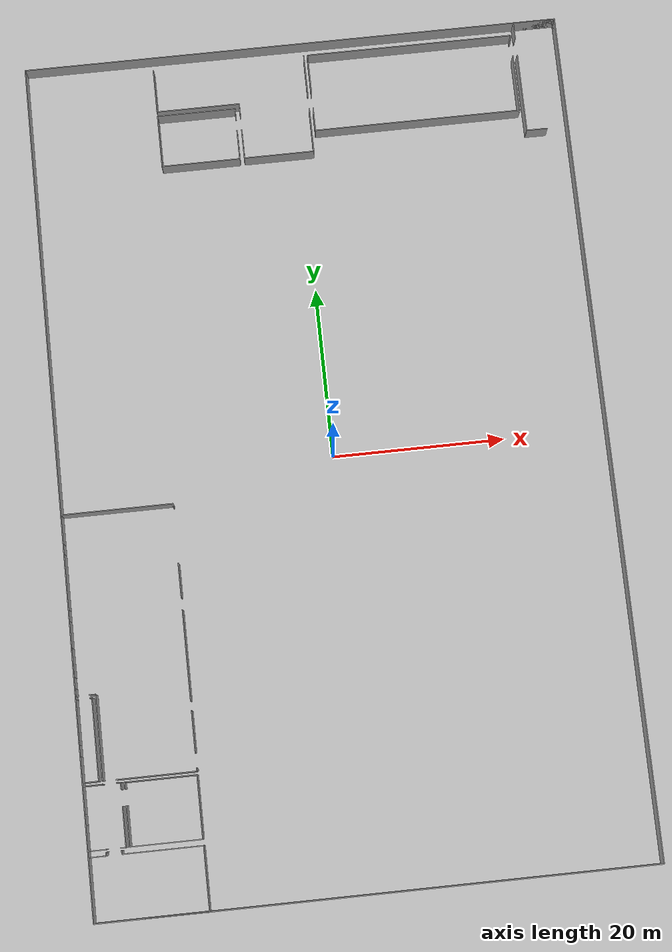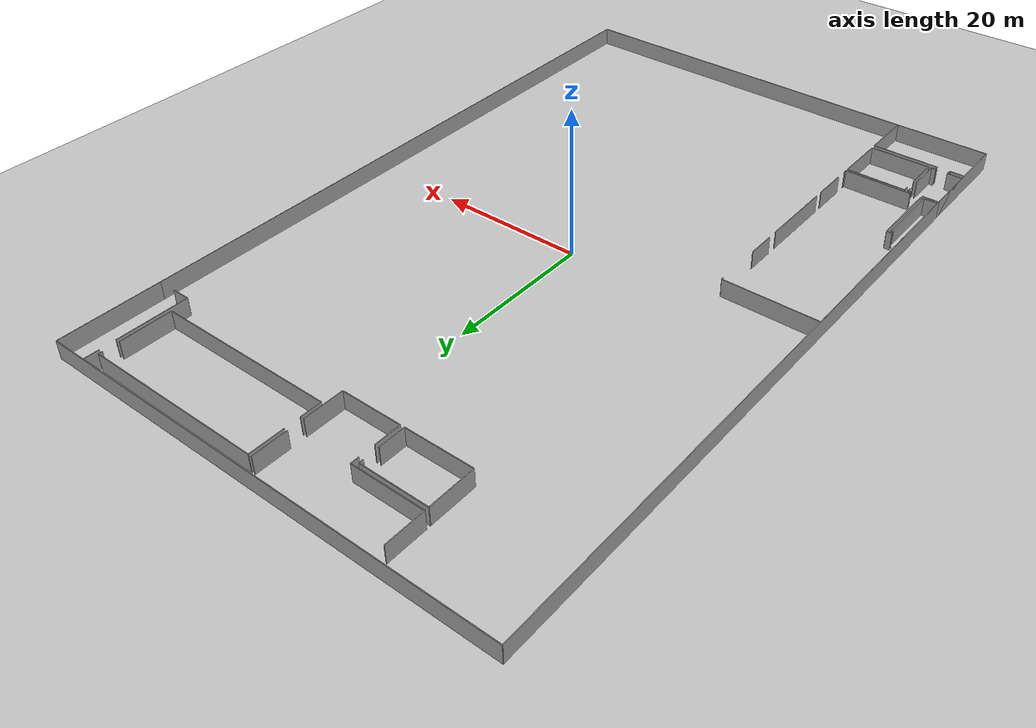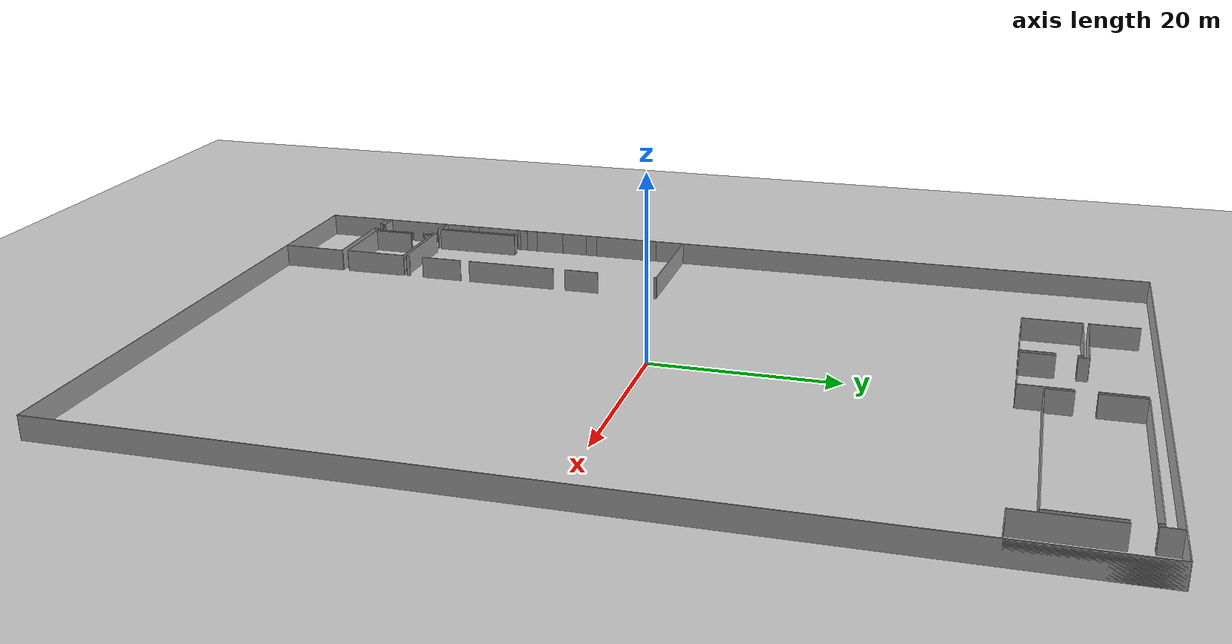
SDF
<sdf version="1.6">
  <world name="default">
    <light name="sun" type="directional">
      <cast_shadows>1</cast_shadows>
      <pose frame="">0 0 10 0 -0 0</pose>
      <diffuse>0.8 0.8 0.8 1</diffuse>
      <specular>0.1 0.1 0.1 1</specular>
      <attenuation>
        <range>1000</range>
        <constant>0.9</constant>
        <linear>0.01</linear>
        <quadratic>0.001</quadratic>
      </attenuation>
      <direction>-0.5 0.5 -1</direction>
    </light>
    <model name="ground_plane">
      <static>1</static>
      <link name="link">
        <collision name="collision">
          <geometry>
            <plane>
              <normal>0 0 1</normal>
              <size>100 100</size>
            </plane>
          </geometry>
          <surface>
            <friction>
              <ode>
                <mu>100</mu>
                <mu2>50</mu2>
              </ode>
              <torsional>
                <ode />
              </torsional>
            </friction>
            <contact>
              <ode />
            </contact>
            <bounce />
          </surface>
          <max_contacts>10</max_contacts>
        </collision>
        <visual name="visual">
          <cast_shadows>0</cast_shadows>
          <geometry>
            <plane>
              <normal>0 0 1</normal>
              <size>100 100</size>
            </plane>
          </geometry>
          <material>
            <script>
              <uri>file://media/materials/scripts/gazebo.material</uri>
              <name>Gazebo/Grey</name>
            </script>
          </material>
        </visual>
        <self_collide>0</self_collide>
        <kinematic>0</kinematic>
        <gravity>1</gravity>
      </link>
    </model>
    <gravity>0 0 -9.8</gravity>
    <magnetic_field>6e-06 2.3e-05 -4.2e-05</magnetic_field>
    <atmosphere type="adiabatic" />
    <physics default="0" name="default_physics" type="ode">
      <max_step_size>0.001</max_step_size>
      <real_time_factor>1</real_time_factor>
      <real_time_update_rate>1000</real_time_update_rate>
    </physics>
    <scene>
      <ambient>0.4 0.4 0.4 1</ambient>
      <background>0.7 0.7 0.7 1</background>
      <shadows>1</shadows>
    </scene>
    <spherical_coordinates>
      <surface_model>EARTH_WGS84</surface_model>
      <latitude_deg>0</latitude_deg>
      <longitude_deg>0</longitude_deg>
      <elevation>0</elevation>
      <heading_deg>0</heading_deg>
    </spherical_coordinates>
  <model name="0510035523_A_40_1_106">
		<static>1</static>
		<link name="Wall_0">
			<collision name="Wall_0_Collision">
				<geometry>
					<box>
						<size>7.23037627235 0.1 2.5</size>
					</box>
				</geometry>
				<pose frame="">3.61518813617 0 1.25 0 0 0</pose>
			</collision>
			<visual name="Wall_0_Visual">
				<pose frame="">3.61518813617 0 1.25 0 0 0</pose>
				<geometry>
					<box>
						<size>7.23037627235 0.1 2.5</size>
					</box>
				</geometry>
				<material>
					<script>
						<uri>file://media/materials/scripts/gazebo.material</uri>
						<name>Gazebo/Grey</name>
					</script>
					<ambient>1 1 1 1</ambient>
				</material>
			</visual>
			<pose frame="">0.00101660884704 -99.8797860038 0 0 0 1.57079632679</pose>
		</link>
		<link name="Wall_1">
			<collision name="Wall_1_Collision">
				<geometry>
					<box>
						<size>1.98950351365 0.1 2.5</size>
					</box>
				</geometry>
				<pose frame="">0.994751756827 0 1.25 0 0 0</pose>
			</collision>
			<visual name="Wall_1_Visual">
				<pose frame="">0.994751756827 0 1.25 0 0 0</pose>
				<geometry>
					<box>
						<size>1.98950351365 0.1 2.5</size>
					</box>
				</geometry>
				<material>
					<script>
						<uri>file://media/materials/scripts/gazebo.material</uri>
						<name>Gazebo/Grey</name>
					</script>
					<ambient>1 1 1 1</ambient>
				</material>
			</visual>
			<pose frame="">0.00101660884704 -92.6494097315 0 0 0 0.0</pose>
		</link>
		<link name="Wall_2">
			<collision name="Wall_2_Collision">
				<geometry>
					<box>
						<size>0.396477450345 0.1 2.5</size>
					</box>
				</geometry>
				<pose frame="">0.198238725172 0 1.25 0 0 0</pose>
			</collision>
			<visual name="Wall_2_Visual">
				<pose frame="">0.198238725172 0 1.25 0 0 0</pose>
				<geometry>
					<box>
						<size>0.396477450345 0.1 2.5</size>
					</box>
				</geometry>
				<material>
					<script>
						<uri>file://media/materials/scripts/gazebo.material</uri>
						<name>Gazebo/Grey</name>
					</script>
					<ambient>1 1 1 1</ambient>
				</material>
			</visual>
			<pose frame="">1.9905201225 -92.6494097315 0 0 0 1.57079632679</pose>
		</link>
		<link name="Wall_3">
			<collision name="Wall_3_Collision">
				<geometry>
					<box>
						<size>0.124026279339 0.1 2.5</size>
					</box>
				</geometry>
				<pose frame="">0.0620131396693 0 1.25 0 0 0</pose>
			</collision>
			<visual name="Wall_3_Visual">
				<pose frame="">0.0620131396693 0 1.25 0 0 0</pose>
				<geometry>
					<box>
						<size>0.124026279339 0.1 2.5</size>
					</box>
				</geometry>
				<material>
					<script>
						<uri>file://media/materials/scripts/gazebo.material</uri>
						<name>Gazebo/Grey</name>
					</script>
					<ambient>1 1 1 1</ambient>
				</material>
			</visual>
			<pose frame="">1.9905201225 -92.2529322811 0 0 0 0.0</pose>
		</link>
		<link name="Wall_4">
			<collision name="Wall_4_Collision">
				<geometry>
					<box>
						<size>0.0815828599748 0.1 2.5</size>
					</box>
				</geometry>
				<pose frame="">0.0407914299874 0 1.25 0 0 0</pose>
			</collision>
			<visual name="Wall_4_Visual">
				<pose frame="">0.0407914299874 0 1.25 0 0 0</pose>
				<geometry>
					<box>
						<size>0.0815828599748 0.1 2.5</size>
					</box>
				</geometry>
				<material>
					<script>
						<uri>file://media/materials/scripts/gazebo.material</uri>
						<name>Gazebo/Grey</name>
					</script>
					<ambient>1 1 1 1</ambient>
				</material>
			</visual>
			<pose frame="">3.68215724397 -92.2529322811 0 0 0 0.0</pose>
		</link>
		<link name="Wall_5">
			<collision name="Wall_5_Collision">
				<geometry>
					<box>
						<size>0.385803057451 0.1 2.5</size>
					</box>
				</geometry>
				<pose frame="">0.192901528726 0 1.25 0 0 0</pose>
			</collision>
			<visual name="Wall_5_Visual">
				<pose frame="">0.192901528726 0 1.25 0 0 0</pose>
				<geometry>
					<box>
						<size>0.385803057451 0.1 2.5</size>
					</box>
				</geometry>
				<material>
					<script>
						<uri>file://media/materials/scripts/gazebo.material</uri>
						<name>Gazebo/Grey</name>
					</script>
					<ambient>1 1 1 1</ambient>
				</material>
			</visual>
			<pose frame="">3.76374010395 -92.2529322811 0 0 0 -1.57079632679</pose>
		</link>
		<link name="Wall_6">
			<collision name="Wall_6_Collision">
				<geometry>
					<box>
						<size>9.12431855438 0.1 2.5</size>
					</box>
				</geometry>
				<pose frame="">4.56215927719 0 1.25 0 0 0</pose>
			</collision>
			<visual name="Wall_6_Visual">
				<pose frame="">4.56215927719 0 1.25 0 0 0</pose>
				<geometry>
					<box>
						<size>9.12431855438 0.1 2.5</size>
					</box>
				</geometry>
				<material>
					<script>
						<uri>file://media/materials/scripts/gazebo.material</uri>
						<name>Gazebo/Grey</name>
					</script>
					<ambient>1 1 1 1</ambient>
				</material>
			</visual>
			<pose frame="">3.76374010395 -92.6387353386 0 0 0 0.0</pose>
		</link>
		<link name="Wall_7">
			<collision name="Wall_7_Collision">
				<geometry>
					<box>
						<size>7.2336802511 0.1 2.5</size>
					</box>
				</geometry>
				<pose frame="">3.61684012555 0 1.25 0 0 0</pose>
			</collision>
			<visual name="Wall_7_Visual">
				<pose frame="">3.61684012555 0 1.25 0 0 0</pose>
				<geometry>
					<box>
						<size>7.2336802511 0.1 2.5</size>
					</box>
				</geometry>
				<material>
					<script>
						<uri>file://media/materials/scripts/gazebo.material</uri>
						<name>Gazebo/Grey</name>
					</script>
					<ambient>1 1 1 1</ambient>
				</material>
			</visual>
			<pose frame="">12.8880586583 -92.6387353386 0 0 0 -1.57079632679</pose>
		</link>
		<link name="Wall_8">
			<collision name="Wall_8_Collision">
				<geometry>
					<box>
						<size>12.8870441571 0.1 2.5</size>
					</box>
				</geometry>
				<pose frame="">6.44352207857 0 1.25 0 0 0</pose>
			</collision>
			<visual name="Wall_8_Visual">
				<pose frame="">6.44352207857 0 1.25 0 0 0</pose>
				<geometry>
					<box>
						<size>12.8870441571 0.1 2.5</size>
					</box>
				</geometry>
				<material>
					<script>
						<uri>file://media/materials/scripts/gazebo.material</uri>
						<name>Gazebo/Grey</name>
					</script>
					<ambient>1 1 1 1</ambient>
				</material>
			</visual>
			<pose frame="">12.8880586583 -99.8724155897 0 0 0 -3.14102072923</pose>
		</link>
		<link name="Wall_9">
			<collision name="Wall_9_Collision">
				<geometry>
					<box>
						<size>8.17734741337 0.1 2.5</size>
					</box>
				</geometry>
				<pose frame="">4.08867370668 0 1.25 0 0 0</pose>
			</collision>
			<visual name="Wall_9_Visual">
				<pose frame="">4.08867370668 0 1.25 0 0 0</pose>
				<geometry>
					<box>
						<size>8.17734741337 0.1 2.5</size>
					</box>
				</geometry>
				<material>
					<script>
						<uri>file://media/materials/scripts/gazebo.material</uri>
						<name>Gazebo/Grey</name>
					</script>
					<ambient>1 1 1 1</ambient>
				</material>
			</visual>
			<pose frame="">4.67640069638 -84.7806031032 0 0 0 0.0</pose>
		</link>
		<link name="Wall_10">
			<collision name="Wall_10_Collision">
				<geometry>
					<box>
						<size>7.14828510795 0.1 2.5</size>
					</box>
				</geometry>
				<pose frame="">3.57414255398 0 1.25 0 0 0</pose>
			</collision>
			<visual name="Wall_10_Visual">
				<pose frame="">3.57414255398 0 1.25 0 0 0</pose>
				<geometry>
					<box>
						<size>7.14828510795 0.1 2.5</size>
					</box>
				</geometry>
				<material>
					<script>
						<uri>file://media/materials/scripts/gazebo.material</uri>
						<name>Gazebo/Grey</name>
					</script>
					<ambient>1 1 1 1</ambient>
				</material>
			</visual>
			<pose frame="">12.8537481097 -84.7806031032 0 0 0 -1.57079632679</pose>
		</link>
		<link name="Wall_11">
			<collision name="Wall_11_Collision">
				<geometry>
					<box>
						<size>8.16997699922 0.1 2.5</size>
					</box>
				</geometry>
				<pose frame="">4.08498849961 0 1.25 0 0 0</pose>
			</collision>
			<visual name="Wall_11_Visual">
				<pose frame="">4.08498849961 0 1.25 0 0 0</pose>
				<geometry>
					<box>
						<size>8.16997699922 0.1 2.5</size>
					</box>
				</geometry>
				<material>
					<script>
						<uri>file://media/materials/scripts/gazebo.material</uri>
						<name>Gazebo/Grey</name>
					</script>
					<ambient>1 1 1 1</ambient>
				</material>
			</visual>
			<pose frame="">12.8537481097 -91.9288882111 0 0 0 3.14159265359</pose>
		</link>
		<link name="Wall_12">
			<collision name="Wall_12_Collision">
				<geometry>
					<box>
						<size>4.5622863533 0.1 2.5</size>
					</box>
				</geometry>
				<pose frame="">2.28114317665 0 1.25 0 0 0</pose>
			</collision>
			<visual name="Wall_12_Visual">
				<pose frame="">2.28114317665 0 1.25 0 0 0</pose>
				<geometry>
					<box>
						<size>4.5622863533 0.1 2.5</size>
					</box>
				</geometry>
				<material>
					<script>
						<uri>file://media/materials/scripts/gazebo.material</uri>
						<name>Gazebo/Grey</name>
					</script>
					<ambient>1 1 1 1</ambient>
				</material>
			</visual>
			<pose frame="">4.68377111052 -91.9288882111 0 0 0 1.57079632679</pose>
		</link>
		<link name="Wall_13">
			<collision name="Wall_13_Collision">
				<geometry>
					<box>
						<size>0.75258079103 0.1 2.5</size>
					</box>
				</geometry>
				<pose frame="">0.376290395515 0 1.25 0 0 0</pose>
			</collision>
			<visual name="Wall_13_Visual">
				<pose frame="">0.376290395515 0 1.25 0 0 0</pose>
				<geometry>
					<box>
						<size>0.75258079103 0.1 2.5</size>
					</box>
				</geometry>
				<material>
					<script>
						<uri>file://media/materials/scripts/gazebo.material</uri>
						<name>Gazebo/Grey</name>
					</script>
					<ambient>1 1 1 1</ambient>
				</material>
			</visual>
			<pose frame="">4.68377111052 -85.5331478022 0 0 0 1.58059000218</pose>
		</link>
		<link name="Wall_14">
			<collision name="Wall_14_Collision">
				<geometry>
					<box>
						<size>2.8571791646 0.1 2.5</size>
					</box>
				</geometry>
				<pose frame="">1.4285895823 0 1.25 0 0 0</pose>
			</collision>
			<visual name="Wall_14_Visual">
				<pose frame="">1.4285895823 0 1.25 0 0 0</pose>
				<geometry>
					<box>
						<size>2.8571791646 0.1 2.5</size>
					</box>
				</geometry>
				<material>
					<script>
						<uri>file://media/materials/scripts/gazebo.material</uri>
						<name>Gazebo/Grey</name>
					</script>
					<ambient>1 1 1 1</ambient>
				</material>
			</visual>
			<pose frame="">0.0 -91.9507453014 0 0 0 1.57079632679</pose>
		</link>
		<link name="Wall_15">
			<collision name="Wall_15_Collision">
				<geometry>
					<box>
						<size>3.07066702248 0.1 2.5</size>
					</box>
				</geometry>
				<pose frame="">1.53533351124 0 1.25 0 0 0</pose>
			</collision>
			<visual name="Wall_15_Visual">
				<pose frame="">1.53533351124 0 1.25 0 0 0</pose>
				<geometry>
					<box>
						<size>3.07066702248 0.1 2.5</size>
					</box>
				</geometry>
				<material>
					<script>
						<uri>file://media/materials/scripts/gazebo.material</uri>
						<name>Gazebo/Grey</name>
					</script>
					<ambient>1 1 1 1</ambient>
				</material>
			</visual>
			<pose frame="">0.0 -87.8263632089 0 0 0 1.57079632679</pose>
		</link>
		<link name="Wall_16">
			<collision name="Wall_16_Collision">
				<geometry>
					<box>
						<size>2.256363336 0.1 2.5</size>
					</box>
				</geometry>
				<pose frame="">1.128181668 0 1.25 0 0 0</pose>
			</collision>
			<visual name="Wall_16_Visual">
				<pose frame="">1.128181668 0 1.25 0 0 0</pose>
				<geometry>
					<box>
						<size>2.256363336 0.1 2.5</size>
					</box>
				</geometry>
				<material>
					<script>
						<uri>file://media/materials/scripts/gazebo.material</uri>
						<name>Gazebo/Grey</name>
					</script>
					<ambient>1 1 1 1</ambient>
				</material>
			</visual>
			<pose frame="">0.0 -84.7556961864 0 0 0 0.0</pose>
		</link>
		<link name="Wall_17">
			<collision name="Wall_17_Collision">
				<geometry>
					<box>
						<size>0.483397506767 0.1 2.5</size>
					</box>
				</geometry>
				<pose frame="">0.241698753383 0 1.25 0 0 0</pose>
			</collision>
			<visual name="Wall_17_Visual">
				<pose frame="">0.241698753383 0 1.25 0 0 0</pose>
				<geometry>
					<box>
						<size>0.483397506767 0.1 2.5</size>
					</box>
				</geometry>
				<material>
					<script>
						<uri>file://media/materials/scripts/gazebo.material</uri>
						<name>Gazebo/Grey</name>
					</script>
					<ambient>1 1 1 1</ambient>
				</material>
			</visual>
			<pose frame="">3.78737625964 -84.7556961864 0 0 0 0.0</pose>
		</link>
		<link name="Wall_18">
			<collision name="Wall_18_Collision">
				<geometry>
					<box>
						<size>0.805408359066 0.1 2.5</size>
					</box>
				</geometry>
				<pose frame="">0.402704179533 0 1.25 0 0 0</pose>
			</collision>
			<visual name="Wall_18_Visual">
				<pose frame="">0.402704179533 0 1.25 0 0 0</pose>
				<geometry>
					<box>
						<size>0.805408359066 0.1 2.5</size>
					</box>
				</geometry>
				<material>
					<script>
						<uri>file://media/materials/scripts/gazebo.material</uri>
						<name>Gazebo/Grey</name>
					</script>
					<ambient>1 1 1 1</ambient>
				</material>
			</visual>
			<pose frame="">4.27077376641 -84.7556961864 0 0 0 -1.57079632679</pose>
		</link>
		<link name="Wall_19">
			<collision name="Wall_19_Collision">
				<geometry>
					<box>
						<size>4.53127978346 0.1 2.5</size>
					</box>
				</geometry>
				<pose frame="">2.26563989173 0 1.25 0 0 0</pose>
			</collision>
			<visual name="Wall_19_Visual">
				<pose frame="">2.26563989173 0 1.25 0 0 0</pose>
				<geometry>
					<box>
						<size>4.53127978346 0.1 2.5</size>
					</box>
				</geometry>
				<material>
					<script>
						<uri>file://media/materials/scripts/gazebo.material</uri>
						<name>Gazebo/Grey</name>
					</script>
					<ambient>1 1 1 1</ambient>
				</material>
			</visual>
			<pose frame="">4.27077376641 -87.4118409515 0 0 0 -1.57079632679</pose>
		</link>
		<link name="Wall_20">
			<collision name="Wall_20_Collision">
				<geometry>
					<box>
						<size>0.599036763117 0.1 2.5</size>
					</box>
				</geometry>
				<pose frame="">0.299518381559 0 1.25 0 0 0</pose>
			</collision>
			<visual name="Wall_20_Visual">
				<pose frame="">0.299518381559 0 1.25 0 0 0</pose>
				<geometry>
					<box>
						<size>0.599036763117 0.1 2.5</size>
					</box>
				</geometry>
				<material>
					<script>
						<uri>file://media/materials/scripts/gazebo.material</uri>
						<name>Gazebo/Grey</name>
					</script>
					<ambient>1 1 1 1</ambient>
				</material>
			</visual>
			<pose frame="">4.27077376641 -91.943120735 0 0 0 3.14159265359</pose>
		</link>
		<link name="Wall_21">
			<collision name="Wall_21_Collision">
				<geometry>
					<box>
						<size>2.08279133121 0.1 2.5</size>
					</box>
				</geometry>
				<pose frame="">1.04139566561 0 1.25 0 0 0</pose>
			</collision>
			<visual name="Wall_21_Visual">
				<pose frame="">1.04139566561 0 1.25 0 0 0</pose>
				<geometry>
					<box>
						<size>2.08279133121 0.1 2.5</size>
					</box>
				</geometry>
				<material>
					<script>
						<uri>file://media/materials/scripts/gazebo.material</uri>
						<name>Gazebo/Grey</name>
					</script>
					<ambient>1 1 1 1</ambient>
				</material>
			</visual>
			<pose frame="">2.08277737537 -91.943120735 0 0 0 -3.13793190118</pose>
		</link>
		<link name="Wall_22">
			<collision name="Wall_22_Collision">
				<geometry>
					<box>
						<size>3.04220197476 0.1 2.5</size>
					</box>
				</geometry>
				<pose frame="">1.52110098738 0 1.25 0 0 0</pose>
			</collision>
			<visual name="Wall_22_Visual">
				<pose frame="">1.52110098738 0 1.25 0 0 0</pose>
				<geometry>
					<box>
						<size>3.04220197476 0.1 2.5</size>
					</box>
				</geometry>
				<material>
					<script>
						<uri>file://media/materials/scripts/gazebo.material</uri>
						<name>Gazebo/Grey</name>
					</script>
					<ambient>1 1 1 1</ambient>
				</material>
			</visual>
			<pose frame="">0.00177906548231 -69.1830277153 0 0 0 1.57079632679</pose>
		</link>
		<link name="Wall_23">
			<collision name="Wall_23_Collision">
				<geometry>
					<box>
						<size>6.3863367771 0.1 2.5</size>
					</box>
				</geometry>
				<pose frame="">3.19316838855 0 1.25 0 0 0</pose>
			</collision>
			<visual name="Wall_23_Visual">
				<pose frame="">3.19316838855 0 1.25 0 0 0</pose>
				<geometry>
					<box>
						<size>6.3863367771 0.1 2.5</size>
					</box>
				</geometry>
				<material>
					<script>
						<uri>file://media/materials/scripts/gazebo.material</uri>
						<name>Gazebo/Grey</name>
					</script>
					<ambient>1 1 1 1</ambient>
				</material>
			</visual>
			<pose frame="">0.00177906548231 -64.840328873 0 0 0 1.57079632679</pose>
		</link>
		<link name="Wall_24">
			<collision name="Wall_24_Collision">
				<geometry>
					<box>
						<size>3.3088076449 0.1 2.5</size>
					</box>
				</geometry>
				<pose frame="">1.65440382245 0 1.25 0 0 0</pose>
			</collision>
			<visual name="Wall_24_Visual">
				<pose frame="">1.65440382245 0 1.25 0 0 0</pose>
				<geometry>
					<box>
						<size>3.3088076449 0.1 2.5</size>
					</box>
				</geometry>
				<material>
					<script>
						<uri>file://media/materials/scripts/gazebo.material</uri>
						<name>Gazebo/Grey</name>
					</script>
					<ambient>1 1 1 1</ambient>
				</material>
			</visual>
			<pose frame="">0.00177906548231 -57.2111877804 0 0 0 1.57079632679</pose>
		</link>
		<link name="Wall_25">
			<collision name="Wall_25_Collision">
				<geometry>
					<box>
						<size>12.8819590052 0.1 2.5</size>
					</box>
				</geometry>
				<pose frame="">6.44097950262 0 1.25 0 0 0</pose>
			</collision>
			<visual name="Wall_25_Visual">
				<pose frame="">6.44097950262 0 1.25 0 0 0</pose>
				<geometry>
					<box>
						<size>12.8819590052 0.1 2.5</size>
					</box>
				</geometry>
				<material>
					<script>
						<uri>file://media/materials/scripts/gazebo.material</uri>
						<name>Gazebo/Grey</name>
					</script>
					<ambient>1 1 1 1</ambient>
				</material>
			</visual>
			<pose frame="">0.00177906548231 -53.9023801355 0 0 0 0.0</pose>
		</link>
		<link name="Wall_26">
			<collision name="Wall_26_Collision">
				<geometry>
					<box>
						<size>0.275246845336 0.1 2.5</size>
					</box>
				</geometry>
				<pose frame="">0.137623422668 0 1.25 0 0 0</pose>
			</collision>
			<visual name="Wall_26_Visual">
				<pose frame="">0.137623422668 0 1.25 0 0 0</pose>
				<geometry>
					<box>
						<size>0.275246845336 0.1 2.5</size>
					</box>
				</geometry>
				<material>
					<script>
						<uri>file://media/materials/scripts/gazebo.material</uri>
						<name>Gazebo/Grey</name>
					</script>
					<ambient>1 1 1 1</ambient>
				</material>
			</visual>
			<pose frame="">12.8837380707 -53.9023801355 0 0 0 -1.57079632679</pose>
		</link>
		<link name="Wall_27">
			<collision name="Wall_27_Collision">
				<geometry>
					<box>
						<size>3.95587917604 0.1 2.5</size>
					</box>
				</geometry>
				<pose frame="">1.97793958802 0 1.25 0 0 0</pose>
			</collision>
			<visual name="Wall_27_Visual">
				<pose frame="">1.97793958802 0 1.25 0 0 0</pose>
				<geometry>
					<box>
						<size>3.95587917604 0.1 2.5</size>
					</box>
				</geometry>
				<material>
					<script>
						<uri>file://media/materials/scripts/gazebo.material</uri>
						<name>Gazebo/Grey</name>
					</script>
					<ambient>1 1 1 1</ambient>
				</material>
			</visual>
			<pose frame="">12.8837380707 -60.787363552 0 0 0 -1.57079632679</pose>
		</link>
		<link name="Wall_28">
			<collision name="Wall_28_Collision">
				<geometry>
					<box>
						<size>10.3630564345 0.1 2.5</size>
					</box>
				</geometry>
				<pose frame="">5.18152821725 0 1.25 0 0 0</pose>
			</collision>
			<visual name="Wall_28_Visual">
				<pose frame="">5.18152821725 0 1.25 0 0 0</pose>
				<geometry>
					<box>
						<size>10.3630564345 0.1 2.5</size>
					</box>
				</geometry>
				<material>
					<script>
						<uri>file://media/materials/scripts/gazebo.material</uri>
						<name>Gazebo/Grey</name>
					</script>
					<ambient>1 1 1 1</ambient>
				</material>
			</visual>
			<pose frame="">12.8837380707 -66.1459087848 0 0 0 -1.57079632679</pose>
		</link>
		<link name="Wall_29">
			<collision name="Wall_29_Collision">
				<geometry>
					<box>
						<size>4.77984064656 0.1 2.5</size>
					</box>
				</geometry>
				<pose frame="">2.38992032328 0 1.25 0 0 0</pose>
			</collision>
			<visual name="Wall_29_Visual">
				<pose frame="">2.38992032328 0 1.25 0 0 0</pose>
				<geometry>
					<box>
						<size>4.77984064656 0.1 2.5</size>
					</box>
				</geometry>
				<material>
					<script>
						<uri>file://media/materials/scripts/gazebo.material</uri>
						<name>Gazebo/Grey</name>
					</script>
					<ambient>1 1 1 1</ambient>
				</material>
			</visual>
			<pose frame="">12.8837380707 -77.5855539883 0 0 0 -1.57079632679</pose>
		</link>
		<link name="Wall_30">
			<collision name="Wall_30_Collision">
				<geometry>
					<box>
						<size>0.392156862745 0.1 2.5</size>
					</box>
				</geometry>
				<pose frame="">0.196078431373 0 1.25 0 0 0</pose>
			</collision>
			<visual name="Wall_30_Visual">
				<pose frame="">0.196078431373 0 1.25 0 0 0</pose>
				<geometry>
					<box>
						<size>0.392156862745 0.1 2.5</size>
					</box>
				</geometry>
				<material>
					<script>
						<uri>file://media/materials/scripts/gazebo.material</uri>
						<name>Gazebo/Grey</name>
					</script>
					<ambient>1 1 1 1</ambient>
				</material>
			</visual>
			<pose frame="">12.8837380707 -84.0079803794 0 0 0 -1.57079632679</pose>
		</link>
		<link name="Wall_31">
			<collision name="Wall_31_Collision">
				<geometry>
					<box>
						<size>9.13499294728 0.1 2.5</size>
					</box>
				</geometry>
				<pose frame="">4.56749647364 0 1.25 0 0 0</pose>
			</collision>
			<visual name="Wall_31_Visual">
				<pose frame="">4.56749647364 0 1.25 0 0 0</pose>
				<geometry>
					<box>
						<size>9.13499294728 0.1 2.5</size>
					</box>
				</geometry>
				<material>
					<script>
						<uri>file://media/materials/scripts/gazebo.material</uri>
						<name>Gazebo/Grey</name>
					</script>
					<ambient>1 1 1 1</ambient>
				</material>
			</visual>
			<pose frame="">12.8837380707 -84.4001372422 0 0 0 3.14159265359</pose>
		</link>
		<link name="Wall_32">
			<collision name="Wall_32_Collision">
				<geometry>
					<box>
						<size>9.71268092461 0.1 2.5</size>
					</box>
				</geometry>
				<pose frame="">4.8563404623 0 1.25 0 0 0</pose>
			</collision>
			<visual name="Wall_32_Visual">
				<pose frame="">4.8563404623 0 1.25 0 0 0</pose>
				<geometry>
					<box>
						<size>9.71268092461 0.1 2.5</size>
					</box>
				</geometry>
				<material>
					<script>
						<uri>file://media/materials/scripts/gazebo.material</uri>
						<name>Gazebo/Grey</name>
					</script>
					<ambient>1 1 1 1</ambient>
				</material>
			</visual>
			<pose frame="">2.27491644746 -84.4001372422 0 0 0 1.57079632679</pose>
		</link>
		<link name="Wall_33">
			<collision name="Wall_33_Collision">
				<geometry>
					<box>
						<size>0.713405258409 0.1 2.5</size>
					</box>
				</geometry>
				<pose frame="">0.356702629205 0 1.25 0 0 0</pose>
			</collision>
			<visual name="Wall_33_Visual">
				<pose frame="">0.356702629205 0 1.25 0 0 0</pose>
				<geometry>
					<box>
						<size>0.713405258409 0.1 2.5</size>
					</box>
				</geometry>
				<material>
					<script>
						<uri>file://media/materials/scripts/gazebo.material</uri>
						<name>Gazebo/Grey</name>
					</script>
					<ambient>1 1 1 1</ambient>
				</material>
			</visual>
			<pose frame="">2.27491644746 -74.6874563176 0 0 0 3.14159265359</pose>
		</link>
		<link name="Wall_34">
			<collision name="Wall_34_Collision">
				<geometry>
					<box>
						<size>0.893345024335 0.1 2.5</size>
					</box>
				</geometry>
				<pose frame="">0.446672512168 0 1.25 0 0 0</pose>
			</collision>
			<visual name="Wall_34_Visual">
				<pose frame="">0.446672512168 0 1.25 0 0 0</pose>
				<geometry>
					<box>
						<size>0.893345024335 0.1 2.5</size>
					</box>
				</geometry>
				<material>
					<script>
						<uri>file://media/materials/scripts/gazebo.material</uri>
						<name>Gazebo/Grey</name>
					</script>
					<ambient>1 1 1 1</ambient>
				</material>
			</visual>
			<pose frame="">0.0434600282109 -74.6874563176 0 0 0 1.57079632679</pose>
		</link>
		<link name="Wall_35">
			<collision name="Wall_35_Collision">
				<geometry>
					<box>
						<size>3.34032842674 0.1 2.5</size>
					</box>
				</geometry>
				<pose frame="">1.67016421337 0 1.25 0 0 0</pose>
			</collision>
			<visual name="Wall_35_Visual">
				<pose frame="">1.67016421337 0 1.25 0 0 0</pose>
				<geometry>
					<box>
						<size>3.34032842674 0.1 2.5</size>
					</box>
				</geometry>
				<material>
					<script>
						<uri>file://media/materials/scripts/gazebo.material</uri>
						<name>Gazebo/Grey</name>
					</script>
					<ambient>1 1 1 1</ambient>
				</material>
			</visual>
			<pose frame="">0.0434600282109 -72.5230960822 0 0 0 1.5832747538</pose>
		</link>
		<link name="Wall_36">
			<collision name="Wall_36_Collision">
				<geometry>
					<box>
						<size>2.96417724575 0.1 2.5</size>
					</box>
				</geometry>
				<pose frame="">1.48208862288 0 1.25 0 0 0</pose>
			</collision>
			<visual name="Wall_36_Visual">
				<pose frame="">1.48208862288 0 1.25 0 0 0</pose>
				<geometry>
					<box>
						<size>2.96417724575 0.1 2.5</size>
					</box>
				</geometry>
				<material>
					<script>
						<uri>file://media/materials/scripts/gazebo.material</uri>
						<name>Gazebo/Grey</name>
					</script>
					<ambient>1 1 1 1</ambient>
				</material>
			</visual>
			<pose frame="">0.00482889202343 -84.3836173484 0 0 0 1.57079632679</pose>
		</link>
		<link name="Wall_37">
			<collision name="Wall_37_Collision">
				<geometry>
					<box>
						<size>5.1242168935 0.1 2.5</size>
					</box>
				</geometry>
				<pose frame="">2.56210844675 0 1.25 0 0 0</pose>
			</collision>
			<visual name="Wall_37_Visual">
				<pose frame="">2.56210844675 0 1.25 0 0 0</pose>
				<geometry>
					<box>
						<size>5.1242168935 0.1 2.5</size>
					</box>
				</geometry>
				<material>
					<script>
						<uri>file://media/materials/scripts/gazebo.material</uri>
						<name>Gazebo/Grey</name>
					</script>
					<ambient>1 1 1 1</ambient>
				</material>
			</visual>
			<pose frame="">0.00482889202343 -80.1590992846 0 0 0 1.57079632679</pose>
		</link>
		<link name="Wall_38">
			<collision name="Wall_38_Collision">
				<geometry>
					<box>
						<size>0.284142172747 0.1 2.5</size>
					</box>
				</geometry>
				<pose frame="">0.142071086374 0 1.25 0 0 0</pose>
			</collision>
			<visual name="Wall_38_Visual">
				<pose frame="">0.142071086374 0 1.25 0 0 0</pose>
				<geometry>
					<box>
						<size>0.284142172747 0.1 2.5</size>
					</box>
				</geometry>
				<material>
					<script>
						<uri>file://media/materials/scripts/gazebo.material</uri>
						<name>Gazebo/Grey</name>
					</script>
					<ambient>1 1 1 1</ambient>
				</material>
			</visual>
			<pose frame="">1.56100288463 -75.0348823911 0 0 0 0.0</pose>
		</link>
		<link name="Wall_39">
			<collision name="Wall_39_Collision">
				<geometry>
					<box>
						<size>9.33882302111 0.1 2.5</size>
					</box>
				</geometry>
				<pose frame="">4.66941151055 0 1.25 0 0 0</pose>
			</collision>
			<visual name="Wall_39_Visual">
				<pose frame="">4.66941151055 0 1.25 0 0 0</pose>
				<geometry>
					<box>
						<size>9.33882302111 0.1 2.5</size>
					</box>
				</geometry>
				<material>
					<script>
						<uri>file://media/materials/scripts/gazebo.material</uri>
						<name>Gazebo/Grey</name>
					</script>
					<ambient>1 1 1 1</ambient>
				</material>
			</visual>
			<pose frame="">1.84514505737 -75.0348823911 0 0 0 -1.57079632679</pose>
		</link>
		<link name="Wall_40">
			<collision name="Wall_40_Collision">
				<geometry>
					<box>
						<size>1.84034285798 0.1 2.5</size>
					</box>
				</geometry>
				<pose frame="">0.920171428992 0 1.25 0 0 0</pose>
			</collision>
			<visual name="Wall_40_Visual">
				<pose frame="">0.920171428992 0 1.25 0 0 0</pose>
				<geometry>
					<box>
						<size>1.84034285798 0.1 2.5</size>
					</box>
				</geometry>
				<material>
					<script>
						<uri>file://media/materials/scripts/gazebo.material</uri>
						<name>Gazebo/Grey</name>
					</script>
					<ambient>1 1 1 1</ambient>
				</material>
			</visual>
			<pose frame="">1.84514505737 -84.3737054122 0 0 0 -3.13620670926</pose>
		</link>
		<link name="Wall_41">
			<collision name="Wall_41_Collision">
				<geometry>
					<box>
						<size>5.24392258524 0.1 2.5</size>
					</box>
				</geometry>
				<pose frame="">2.62196129262 0 1.25 0 0 0</pose>
			</collision>
			<visual name="Wall_41_Visual">
				<pose frame="">2.62196129262 0 1.25 0 0 0</pose>
				<geometry>
					<box>
						<size>5.24392258524 0.1 2.5</size>
					</box>
				</geometry>
				<material>
					<script>
						<uri>file://media/materials/scripts/gazebo.material</uri>
						<name>Gazebo/Grey</name>
					</script>
					<ambient>1 1 1 1</ambient>
				</material>
			</visual>
			<pose frame="">15.2056726774 -6.76807339916 0 0 0 1.57079632679</pose>
		</link>
		<link name="Wall_42">
			<collision name="Wall_42_Collision">
				<geometry>
					<box>
						<size>4.57270659398 0.1 2.5</size>
					</box>
				</geometry>
				<pose frame="">2.28635329699 0 1.25 0 0 0</pose>
			</collision>
			<visual name="Wall_42_Visual">
				<pose frame="">2.28635329699 0 1.25 0 0 0</pose>
				<geometry>
					<box>
						<size>4.57270659398 0.1 2.5</size>
					</box>
				</geometry>
				<material>
					<script>
						<uri>file://media/materials/scripts/gazebo.material</uri>
						<name>Gazebo/Grey</name>
					</script>
					<ambient>1 1 1 1</ambient>
				</material>
			</visual>
			<pose frame="">33.2487006468 -1.52415081392 0 0 0 -1.57079632679</pose>
		</link>
		<link name="Wall_43">
			<collision name="Wall_43_Collision">
				<geometry>
					<box>
						<size>5.33338416378 0.1 2.5</size>
					</box>
				</geometry>
				<pose frame="">2.66669208189 0 1.25 0 0 0</pose>
			</collision>
			<visual name="Wall_43_Visual">
				<pose frame="">2.66669208189 0 1.25 0 0 0</pose>
				<geometry>
					<box>
						<size>5.33338416378 0.1 2.5</size>
					</box>
				</geometry>
				<material>
					<script>
						<uri>file://media/materials/scripts/gazebo.material</uri>
						<name>Gazebo/Grey</name>
					</script>
					<ambient>1 1 1 1</ambient>
				</material>
			</visual>
			<pose frame="">33.2487006468 -8.19844204694 0 0 0 -1.57079632679</pose>
		</link>
		<link name="Wall_44">
			<collision name="Wall_44_Collision">
				<geometry>
					<box>
						<size>8.25765951228 0.1 2.5</size>
					</box>
				</geometry>
				<pose frame="">4.12882975614 0 1.25 0 0 0</pose>
			</collision>
			<visual name="Wall_44_Visual">
				<pose frame="">4.12882975614 0 1.25 0 0 0</pose>
				<geometry>
					<box>
						<size>8.25765951228 0.1 2.5</size>
					</box>
				</geometry>
				<material>
					<script>
						<uri>file://media/materials/scripts/gazebo.material</uri>
						<name>Gazebo/Grey</name>
					</script>
					<ambient>1 1 1 1</ambient>
				</material>
			</visual>
			<pose frame="">33.2487006468 -13.5318262107 0 0 0 3.14159265359</pose>
		</link>
		<link name="Wall_45">
			<collision name="Wall_45_Collision">
				<geometry>
					<box>
						<size>3.56728044426 0.1 2.5</size>
					</box>
				</geometry>
				<pose frame="">1.78364022213 0 1.25 0 0 0</pose>
			</collision>
			<visual name="Wall_45_Visual">
				<pose frame="">1.78364022213 0 1.25 0 0 0</pose>
				<geometry>
					<box>
						<size>3.56728044426 0.1 2.5</size>
					</box>
				</geometry>
				<material>
					<script>
						<uri>file://media/materials/scripts/gazebo.material</uri>
						<name>Gazebo/Grey</name>
					</script>
					<ambient>1 1 1 1</ambient>
				</material>
			</visual>
			<pose frame="">24.9910411345 -13.5318262107 0 0 0 1.57079632679</pose>
		</link>
		<link name="Wall_46">
			<collision name="Wall_46_Collision">
				<geometry>
					<box>
						<size>1.07099742036 0.1 2.5</size>
					</box>
				</geometry>
				<pose frame="">0.535498710178 0 1.25 0 0 0</pose>
			</collision>
			<visual name="Wall_46_Visual">
				<pose frame="">0.535498710178 0 1.25 0 0 0</pose>
				<geometry>
					<box>
						<size>1.07099742036 0.1 2.5</size>
					</box>
				</geometry>
				<material>
					<script>
						<uri>file://media/materials/scripts/gazebo.material</uri>
						<name>Gazebo/Grey</name>
					</script>
					<ambient>1 1 1 1</ambient>
				</material>
			</visual>
			<pose frame="">24.9910411345 -7.83398777528 0 0 0 1.57079632679</pose>
		</link>
		<link name="Wall_47">
			<collision name="Wall_47_Collision">
				<geometry>
					<box>
						<size>9.78536977737 0.1 2.5</size>
					</box>
				</geometry>
				<pose frame="">4.89268488869 0 1.25 0 0 0</pose>
			</collision>
			<visual name="Wall_47_Visual">
				<pose frame="">4.89268488869 0 1.25 0 0 0</pose>
				<geometry>
					<box>
						<size>9.78536977737 0.1 2.5</size>
					</box>
				</geometry>
				<material>
					<script>
						<uri>file://media/materials/scripts/gazebo.material</uri>
						<name>Gazebo/Grey</name>
					</script>
					<ambient>1 1 1 1</ambient>
				</material>
			</visual>
			<pose frame="">24.9910411345 -6.76299035492 0 0 0 -3.1410732001</pose>
		</link>
		<link name="Wall_48">
			<collision name="Wall_48_Collision">
				<geometry>
					<box>
						<size>6.26358125882 0.1 2.5</size>
					</box>
				</geometry>
				<pose frame="">3.13179062941 0 1.25 0 0 0</pose>
			</collision>
			<visual name="Wall_48_Visual">
				<pose frame="">3.13179062941 0 1.25 0 0 0</pose>
				<geometry>
					<box>
						<size>6.26358125882 0.1 2.5</size>
					</box>
				</geometry>
				<material>
					<script>
						<uri>file://media/materials/scripts/gazebo.material</uri>
						<name>Gazebo/Grey</name>
					</script>
					<ambient>1 1 1 1</ambient>
				</material>
			</visual>
			<pose frame="">15.2059268296 -13.5674075204 0 0 0 1.57079632679</pose>
		</link>
		<link name="Wall_49">
			<collision name="Wall_49_Collision">
				<geometry>
					<box>
						<size>9.22648774351 0.1 2.5</size>
					</box>
				</geometry>
				<pose frame="">4.61324387175 0 1.25 0 0 0</pose>
			</collision>
			<visual name="Wall_49_Visual">
				<pose frame="">4.61324387175 0 1.25 0 0 0</pose>
				<geometry>
					<box>
						<size>9.22648774351 0.1 2.5</size>
					</box>
				</geometry>
				<material>
					<script>
						<uri>file://media/materials/scripts/gazebo.material</uri>
						<name>Gazebo/Grey</name>
					</script>
					<ambient>1 1 1 1</ambient>
				</material>
			</visual>
			<pose frame="">15.2059268296 -7.30382626155 0 0 0 0.0</pose>
		</link>
		<link name="Wall_50">
			<collision name="Wall_50_Collision">
				<geometry>
					<box>
						<size>0.599799219753 0.1 2.5</size>
					</box>
				</geometry>
				<pose frame="">0.299899609876 0 1.25 0 0 0</pose>
			</collision>
			<visual name="Wall_50_Visual">
				<pose frame="">0.299899609876 0 1.25 0 0 0</pose>
				<geometry>
					<box>
						<size>0.599799219753 0.1 2.5</size>
					</box>
				</geometry>
				<material>
					<script>
						<uri>file://media/materials/scripts/gazebo.material</uri>
						<name>Gazebo/Grey</name>
					</script>
					<ambient>1 1 1 1</ambient>
				</material>
			</visual>
			<pose frame="">24.4324145731 -7.30382626155 0 0 0 -1.57079632679</pose>
		</link>
		<link name="Wall_51">
			<collision name="Wall_51_Collision">
				<geometry>
					<box>
						<size>3.56728044426 0.1 2.5</size>
					</box>
				</geometry>
				<pose frame="">1.78364022213 0 1.25 0 0 0</pose>
			</collision>
			<visual name="Wall_51_Visual">
				<pose frame="">1.78364022213 0 1.25 0 0 0</pose>
				<geometry>
					<box>
						<size>3.56728044426 0.1 2.5</size>
					</box>
				</geometry>
				<material>
					<script>
						<uri>file://media/materials/scripts/gazebo.material</uri>
						<name>Gazebo/Grey</name>
					</script>
					<ambient>1 1 1 1</ambient>
				</material>
			</visual>
			<pose frame="">24.4324145731 -9.98640285667 0 0 0 -1.57079632679</pose>
		</link>
		<link name="Wall_52">
			<collision name="Wall_52_Collision">
				<geometry>
					<box>
						<size>9.22649795076 0.1 2.5</size>
					</box>
				</geometry>
				<pose frame="">4.61324897538 0 1.25 0 0 0</pose>
			</collision>
			<visual name="Wall_52_Visual">
				<pose frame="">4.61324897538 0 1.25 0 0 0</pose>
				<geometry>
					<box>
						<size>9.22649795076 0.1 2.5</size>
					</box>
				</geometry>
				<material>
					<script>
						<uri>file://media/materials/scripts/gazebo.material</uri>
						<name>Gazebo/Grey</name>
					</script>
					<ambient>1 1 1 1</ambient>
				</material>
			</visual>
			<pose frame="">24.4324145731 -13.5536833009 0 0 0 -3.14010517431</pose>
		</link>
		<link name="Wall_53">
			<collision name="Wall_53_Collision">
				<geometry>
					<box>
						<size>2.82185200717 0.1 2.5</size>
					</box>
				</geometry>
				<pose frame="">1.41092600358 0 1.25 0 0 0</pose>
			</collision>
			<visual name="Wall_53_Visual">
				<pose frame="">1.41092600358 0 1.25 0 0 0</pose>
				<geometry>
					<box>
						<size>2.82185200717 0.1 2.5</size>
					</box>
				</geometry>
				<material>
					<script>
						<uri>file://media/materials/scripts/gazebo.material</uri>
						<name>Gazebo/Grey</name>
					</script>
					<ambient>1 1 1 1</ambient>
				</material>
			</visual>
			<pose frame="">33.7003291271 -10.9836961356 0 0 0 1.57079632679</pose>
		</link>
		<link name="Wall_54">
			<collision name="Wall_54_Collision">
				<geometry>
					<box>
						<size>4.53941265424 0.1 2.5</size>
					</box>
				</geometry>
				<pose frame="">2.26970632712 0 1.25 0 0 0</pose>
			</collision>
			<visual name="Wall_54_Visual">
				<pose frame="">2.26970632712 0 1.25 0 0 0</pose>
				<geometry>
					<box>
						<size>4.53941265424 0.1 2.5</size>
					</box>
				</geometry>
				<material>
					<script>
						<uri>file://media/materials/scripts/gazebo.material</uri>
						<name>Gazebo/Grey</name>
					</script>
					<ambient>1 1 1 1</ambient>
				</material>
			</visual>
			<pose frame="">33.7003291271 -6.06940896903 0 0 0 1.57079632679</pose>
		</link>
		<link name="Wall_55">
			<collision name="Wall_55_Collision">
				<geometry>
					<box>
						<size>24.4146239183 0.1 2.5</size>
					</box>
				</geometry>
				<pose frame="">12.2073119591 0 1.25 0 0 0</pose>
			</collision>
			<visual name="Wall_55_Visual">
				<pose frame="">12.2073119591 0 1.25 0 0 0</pose>
				<geometry>
					<box>
						<size>24.4146239183 0.1 2.5</size>
					</box>
				</geometry>
				<material>
					<script>
						<uri>file://media/materials/scripts/gazebo.material</uri>
						<name>Gazebo/Grey</name>
					</script>
					<ambient>1 1 1 1</ambient>
				</material>
			</visual>
			<pose frame="">33.7003291271 -1.52999631479 0 0 0 0.0</pose>
		</link>
		<link name="Wall_56">
			<collision name="Wall_56_Collision">
				<geometry>
					<box>
						<size>0.493055290814 0.1 2.5</size>
					</box>
				</geometry>
				<pose frame="">0.246527645407 0 1.25 0 0 0</pose>
			</collision>
			<visual name="Wall_56_Visual">
				<pose frame="">0.246527645407 0 1.25 0 0 0</pose>
				<geometry>
					<box>
						<size>0.493055290814 0.1 2.5</size>
					</box>
				</geometry>
				<material>
					<script>
						<uri>file://media/materials/scripts/gazebo.material</uri>
						<name>Gazebo/Grey</name>
					</script>
					<ambient>1 1 1 1</ambient>
				</material>
			</visual>
			<pose frame="">58.1149530454 -1.52999631479 0 0 0 -1.57079632679</pose>
		</link>
		<link name="Wall_57">
			<collision name="Wall_57_Collision">
				<geometry>
					<box>
						<size>6.84762304144 0.1 2.5</size>
					</box>
				</geometry>
				<pose frame="">3.42381152072 0 1.25 0 0 0</pose>
			</collision>
			<visual name="Wall_57_Visual">
				<pose frame="">3.42381152072 0 1.25 0 0 0</pose>
				<geometry>
					<box>
						<size>6.84762304144 0.1 2.5</size>
					</box>
				</geometry>
				<material>
					<script>
						<uri>file://media/materials/scripts/gazebo.material</uri>
						<name>Gazebo/Grey</name>
					</script>
					<ambient>1 1 1 1</ambient>
				</material>
			</visual>
			<pose frame="">58.1149530454 -4.1192990482 0 0 0 -1.57079632679</pose>
		</link>
		<link name="Wall_58">
			<collision name="Wall_58_Collision">
				<geometry>
					<box>
						<size>24.4146296806 0.1 2.5</size>
					</box>
				</geometry>
				<pose frame="">12.2073148403 0 1.25 0 0 0</pose>
			</collision>
			<visual name="Wall_58_Visual">
				<pose frame="">12.2073148403 0 1.25 0 0 0</pose>
				<geometry>
					<box>
						<size>24.4146296806 0.1 2.5</size>
					</box>
				</geometry>
				<material>
					<script>
						<uri>file://media/materials/scripts/gazebo.material</uri>
						<name>Gazebo/Grey</name>
					</script>
					<ambient>1 1 1 1</ambient>
				</material>
			</visual>
			<pose frame="">58.1149530454 -10.9669220896 0 0 0 -3.14090560457</pose>
		</link>
		<link name="Wall_59">
			<collision name="Wall_59_Collision">
				<geometry>
					<box>
						<size>9.47021971459 0.1 2.5</size>
					</box>
				</geometry>
				<pose frame="">4.73510985729 0 1.25 0 0 0</pose>
			</collision>
			<visual name="Wall_59_Visual">
				<pose frame="">4.73510985729 0 1.25 0 0 0</pose>
				<geometry>
					<box>
						<size>9.47021971459 0.1 2.5</size>
					</box>
				</geometry>
				<material>
					<script>
						<uri>file://media/materials/scripts/gazebo.material</uri>
						<name>Gazebo/Grey</name>
					</script>
					<ambient>1 1 1 1</ambient>
				</material>
			</visual>
			<pose frame="">58.6585846263 -13.5480919523 0 0 0 1.57079632679</pose>
		</link>
		<link name="Wall_60">
			<collision name="Wall_60_Collision">
				<geometry>
					<box>
						<size>1.97781251191 0.1 2.5</size>
					</box>
				</geometry>
				<pose frame="">0.988906255957 0 1.25 0 0 0</pose>
			</collision>
			<visual name="Wall_60_Visual">
				<pose frame="">0.988906255957 0 1.25 0 0 0</pose>
				<geometry>
					<box>
						<size>1.97781251191 0.1 2.5</size>
					</box>
				</geometry>
				<material>
					<script>
						<uri>file://media/materials/scripts/gazebo.material</uri>
						<name>Gazebo/Grey</name>
					</script>
					<ambient>1 1 1 1</ambient>
				</material>
			</visual>
			<pose frame="">58.6585846263 -1.97781251191 0 0 0 1.57079632679</pose>
		</link>
		<link name="Wall_61">
			<collision name="Wall_61_Collision">
				<geometry>
					<box>
						<size>4.95495152047 0.1 2.5</size>
					</box>
				</geometry>
				<pose frame="">2.47747576023 0 1.25 0 0 0</pose>
			</collision>
			<visual name="Wall_61_Visual">
				<pose frame="">2.47747576023 0 1.25 0 0 0</pose>
				<geometry>
					<box>
						<size>4.95495152047 0.1 2.5</size>
					</box>
				</geometry>
				<material>
					<script>
						<uri>file://media/materials/scripts/gazebo.material</uri>
						<name>Gazebo/Grey</name>
					</script>
					<ambient>1 1 1 1</ambient>
				</material>
			</visual>
			<pose frame="">58.6585846263 -0.0 0 0 0 0.0</pose>
		</link>
		<link name="Wall_62">
			<collision name="Wall_62_Collision">
				<geometry>
					<box>
						<size>13.5592746496 0.1 2.5</size>
					</box>
				</geometry>
				<pose frame="">6.77963732479 0 1.25 0 0 0</pose>
			</collision>
			<visual name="Wall_62_Visual">
				<pose frame="">6.77963732479 0 1.25 0 0 0</pose>
				<geometry>
					<box>
						<size>13.5592746496 0.1 2.5</size>
					</box>
				</geometry>
				<material>
					<script>
						<uri>file://media/materials/scripts/gazebo.material</uri>
						<name>Gazebo/Grey</name>
					</script>
					<ambient>1 1 1 1</ambient>
				</material>
			</visual>
			<pose frame="">63.6135361468 -0.0 0 0 0 -1.57079632679</pose>
		</link>
		<link name="Wall_63">
			<collision name="Wall_63_Collision">
				<geometry>
					<box>
						<size>2.46809746236 0.1 2.5</size>
					</box>
				</geometry>
				<pose frame="">1.23404873118 0 1.25 0 0 0</pose>
			</collision>
			<visual name="Wall_63_Visual">
				<pose frame="">1.23404873118 0 1.25 0 0 0</pose>
				<geometry>
					<box>
						<size>2.46809746236 0.1 2.5</size>
					</box>
				</geometry>
				<material>
					<script>
						<uri>file://media/materials/scripts/gazebo.material</uri>
						<name>Gazebo/Grey</name>
					</script>
					<ambient>1 1 1 1</ambient>
				</material>
			</visual>
			<pose frame="">61.1266567547 -13.5592746496 0 0 0 3.13706174031</pose>
		</link>
		<link name="Wall_64">
			<collision name="Wall_64_Collision">
				<geometry>
					<box>
						<size>99.8797860038 0.1 2.5</size>
					</box>
				</geometry>
				<pose frame="">49.9398930019 0 1.25 0 0 0</pose>
			</collision>
			<visual name="Wall_64_Visual">
				<pose frame="">49.9398930019 0 1.25 0 0 0</pose>
				<geometry>
					<box>
						<size>99.8797860038 0.1 2.5</size>
					</box>
				</geometry>
				<material>
					<script>
						<uri>file://media/materials/scripts/gazebo.material</uri>
						<name>Gazebo/Grey</name>
					</script>
					<ambient>1 1 1 1</ambient>
				</material>
			</visual>
			<pose frame="">63.6135361468 -99.8797860038 0 0 0 1.57079632679</pose>
		</link>
		<link name="Wall_65">
			<collision name="Wall_65_Collision">
				<geometry>
					<box>
						<size>63.6135361468 0.1 2.5</size>
					</box>
				</geometry>
				<pose frame="">31.8067680734 0 1.25 0 0 0</pose>
			</collision>
			<visual name="Wall_65_Visual">
				<pose frame="">31.8067680734 0 1.25 0 0 0</pose>
				<geometry>
					<box>
						<size>63.6135361468 0.1 2.5</size>
					</box>
				</geometry>
				<material>
					<script>
						<uri>file://media/materials/scripts/gazebo.material</uri>
						<name>Gazebo/Grey</name>
					</script>
					<ambient>1 1 1 1</ambient>
				</material>
			</visual>
			<pose frame="">63.6135361468 -99.8797860038 0 0 0 3.14159265359</pose>
		</link>
		<link name="Wall_66">
			<collision name="Wall_66_Collision">
				<geometry>
					<box>
						<size>99.8797860038 0.1 2.5</size>
					</box>
				</geometry>
				<pose frame="">49.9398930019 0 1.25 0 0 0</pose>
			</collision>
			<visual name="Wall_66_Visual">
				<pose frame="">49.9398930019 0 1.25 0 0 0</pose>
				<geometry>
					<box>
						<size>99.8797860038 0.1 2.5</size>
					</box>
				</geometry>
				<material>
					<script>
						<uri>file://media/materials/scripts/gazebo.material</uri>
						<name>Gazebo/Grey</name>
					</script>
					<ambient>1 1 1 1</ambient>
				</material>
			</visual>
			<pose frame="">0.0 -99.8797860038 0 0 0 1.57079632679</pose>
		</link>
		<link name="Wall_67">
			<collision name="Wall_67_Collision">
				<geometry>
					<box>
						<size>63.6135361468 0.1 2.5</size>
					</box>
				</geometry>
				<pose frame="">31.8067680734 0 1.25 0 0 0</pose>
			</collision>
			<visual name="Wall_67_Visual">
				<pose frame="">31.8067680734 0 1.25 0 0 0</pose>
				<geometry>
					<box>
						<size>63.6135361468 0.1 2.5</size>
					</box>
				</geometry>
				<material>
					<script>
						<uri>file://media/materials/scripts/gazebo.material</uri>
						<name>Gazebo/Grey</name>
					</script>
					<ambient>1 1 1 1</ambient>
				</material>
			</visual>
			<pose frame="">0.0 -0.0 0 0 0 0.0</pose>
		</link>
		<pose frame="">-31.8 49.9297860038 0 0 0 0</pose>
	</model>
</world>
</sdf>
